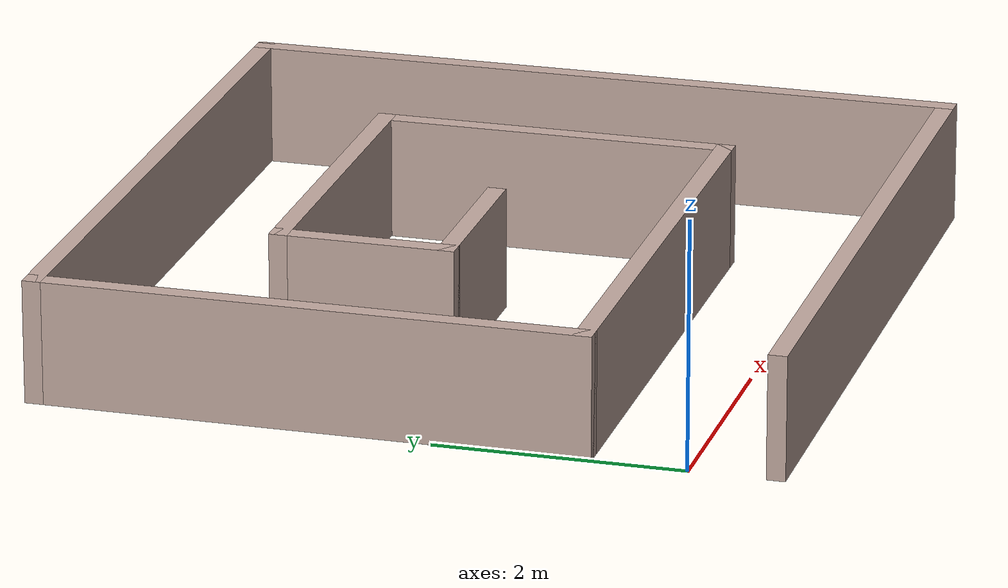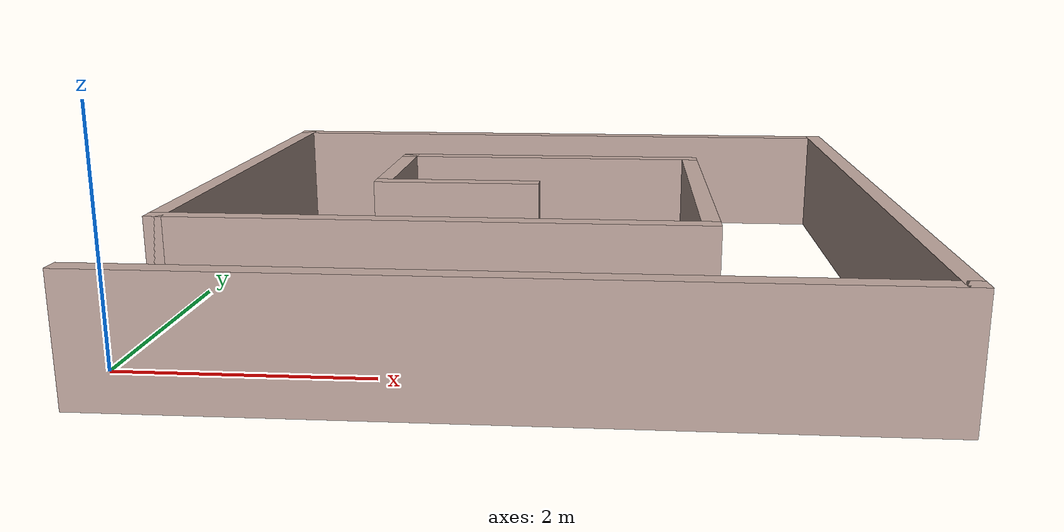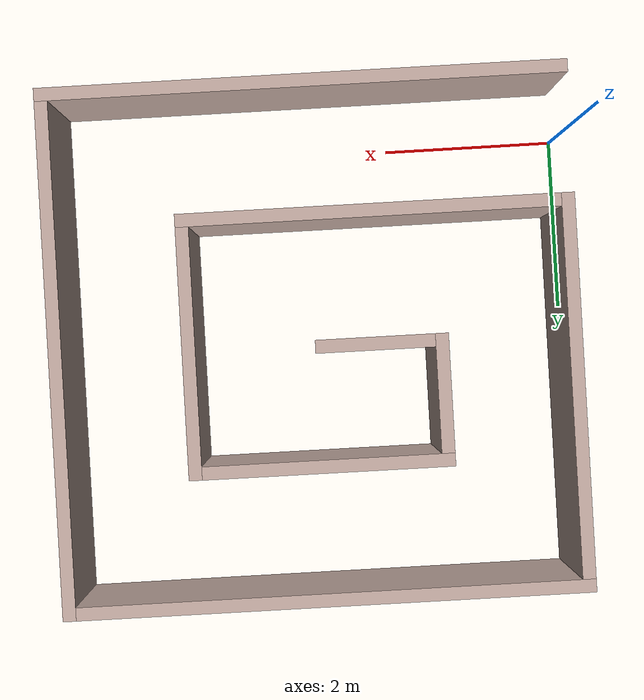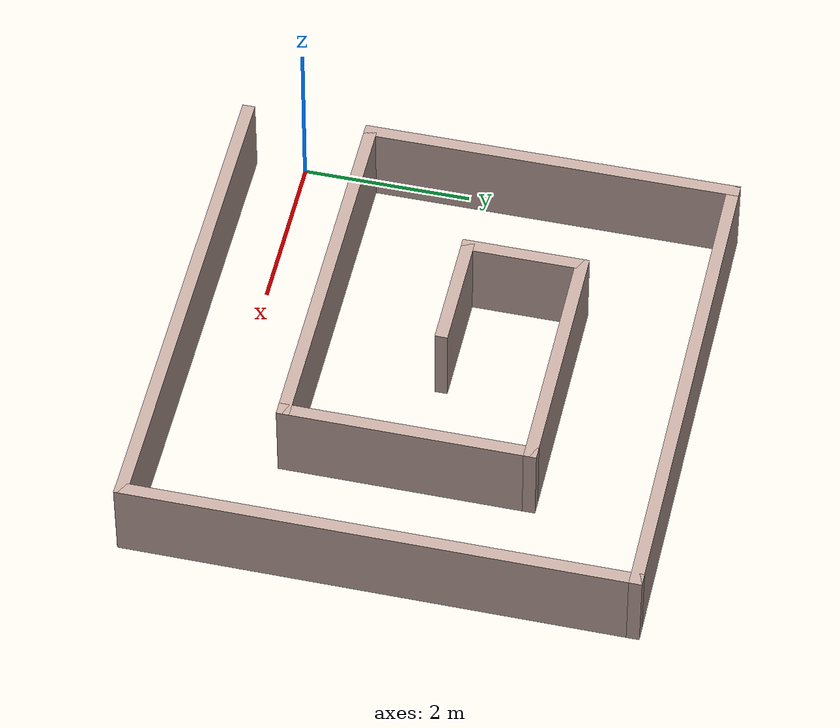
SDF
<?xml version='1.0'?>
<sdf version='1.7'>
  <model name='labirinth'>
    <static>true</static>
    <pose>3 2.25 0 0 0 0</pose>
    <link name='Wall_11'>
      <collision name='Wall_11_Collision'>
        <geometry>
          <box>
            <size>6 0.15 1</size>
          </box>
        </geometry>
        <pose>0 0 0.5 0 -0 0</pose>
      </collision>
      <visual name='Wall_11_Visual'>
        <pose>0 0 0.5 0 -0 0</pose>
        <geometry>
          <box>
            <size>6 0.15 1</size>
          </box>
        </geometry>
        <material>
          <script>
            <uri>file://media/materials/scripts/gazebo.material</uri>
            <name>Gazebo/Grey</name>
          </script>
          <ambient>0.760784 0.662745 0.627451 1</ambient>
        </material>
        <meta>
          <layer>0</layer>
        </meta>
      </visual>
      <pose>-0 -2.925 0 0 -0 3.14159</pose>
    </link>
    <link name='Wall_14'>
      <collision name='Wall_14_Collision'>
        <geometry>
          <box>
            <size>6 0.15 1</size>
          </box>
        </geometry>
        <pose>0 0 0.5 0 -0 0</pose>
      </collision>
      <visual name='Wall_14_Visual'>
        <pose>0 0 0.5 0 -0 0</pose>
        <geometry>
          <box>
            <size>6 0.15 1</size>
          </box>
        </geometry>
        <material>
          <script>
            <uri>file://media/materials/scripts/gazebo.material</uri>
            <name>Gazebo/Grey</name>
          </script>
          <ambient>0.760784 0.662745 0.627451 1</ambient>
        </material>
        <meta>
          <layer>0</layer>
        </meta>
      </visual>
      <pose>2.925 0 0 0 -0 1.5708</pose>
    </link>
    <link name='Wall_15'>
      <collision name='Wall_15_Collision'>
        <geometry>
          <box>
            <size>6 0.15 1</size>
          </box>
        </geometry>
        <pose>0 0 0.5 0 -0 0</pose>
      </collision>
      <visual name='Wall_15_Visual'>
        <pose>0 0 0.5 0 -0 0</pose>
        <geometry>
          <box>
            <size>6 0.15 1</size>
          </box>
        </geometry>
        <material>
          <script>
            <uri>file://media/materials/scripts/gazebo.material</uri>
            <name>Gazebo/Grey</name>
          </script>
          <ambient>0.760784 0.662745 0.627451 1</ambient>
        </material>
        <meta>
          <layer>0</layer>
        </meta>
      </visual>
      <pose>-0 2.925 0 0 -0 3.14159</pose>
    </link>
    <link name='Wall_16'>
      <collision name='Wall_16_Collision'>
        <geometry>
          <box>
            <size>4.5 0.15 1</size>
          </box>
        </geometry>
        <pose>0 0 0.5 0 -0 0</pose>
      </collision>
      <visual name='Wall_16_Visual'>
        <pose>0 0 0.5 0 -0 0</pose>
        <geometry>
          <box>
            <size>4.5 0.15 1</size>
          </box>
        </geometry>
        <material>
          <script>
            <uri>file://media/materials/scripts/gazebo.material</uri>
            <name>Gazebo/Grey</name>
          </script>
          <ambient>0.760784 0.662745 0.627451 1</ambient>
        </material>
        <meta>
          <layer>0</layer>
        </meta>
      </visual>
      <pose>-2.925 0.75 0 0 -0 -1.5708</pose>
    </link>
    <link name='Wall_18'>
      <collision name='Wall_18_Collision'>
        <geometry>
          <box>
            <size>4.5 0.15 1</size>
          </box>
        </geometry>
        <pose>0 0 0.5 0 -0 0</pose>
      </collision>
      <visual name='Wall_18_Visual'>
        <pose>0 0 0.5 0 -0 0</pose>
        <geometry>
          <box>
            <size>4.5 0.15 1</size>
          </box>
        </geometry>
        <material>
          <script>
            <uri>file://media/materials/scripts/gazebo.material</uri>
            <name>Gazebo/Grey</name>
          </script>
          <ambient>0.760784 0.662745 0.627451 1</ambient>
        </material>
        <meta>
          <layer>0</layer>
        </meta>
      </visual>
      <pose>-0.75 -1.425 0 0 -0 0</pose>
    </link>
    <link name='Wall_20'>
      <collision name='Wall_20_Collision'>
        <geometry>
          <box>
            <size>3 0.15 1</size>
          </box>
        </geometry>
        <pose>0 0 0.5 0 -0 0</pose>
      </collision>
      <visual name='Wall_20_Visual'>
        <pose>0 0 0.5 0 -0 0</pose>
        <geometry>
          <box>
            <size>3 0.15 1</size>
          </box>
        </geometry>
        <material>
          <script>
            <uri>file://media/materials/scripts/gazebo.material</uri>
            <name>Gazebo/Grey</name>
          </script>
          <ambient>0.760784 0.662745 0.627451 1</ambient>
        </material>
        <meta>
          <layer>0</layer>
        </meta>
      </visual>
      <pose>1.425 0 0 0 -0 1.5708</pose>
    </link>
    <link name='Wall_21'>
      <collision name='Wall_21_Collision'>
        <geometry>
          <box>
            <size>3 0.15 1</size>
          </box>
        </geometry>
        <pose>0 0 0.5 0 -0 0</pose>
      </collision>
      <visual name='Wall_21_Visual'>
        <pose>0 0 0.5 0 -0 0</pose>
        <geometry>
          <box>
            <size>3 0.15 1</size>
          </box>
        </geometry>
        <material>
          <script>
            <uri>file://media/materials/scripts/gazebo.material</uri>
            <name>Gazebo/Grey</name>
          </script>
          <ambient>0.760784 0.662745 0.627451 1</ambient>
        </material>
        <meta>
          <layer>0</layer>
        </meta>
      </visual>
      <pose>-0 1.425 0 0 -0 3.14159</pose>
    </link>
    <link name='Wall_22'>
      <collision name='Wall_22_Collision'>
        <geometry>
          <box>
            <size>1.5 0.15 1</size>
          </box>
        </geometry>
        <pose>0 0 0.5 0 -0 0</pose>
      </collision>
      <visual name='Wall_22_Visual'>
        <pose>0 0 0.5 0 -0 0</pose>
        <geometry>
          <box>
            <size>1.5 0.15 1</size>
          </box>
        </geometry>
        <material>
          <script>
            <uri>file://media/materials/scripts/gazebo.material</uri>
            <name>Gazebo/Grey</name>
          </script>
          <ambient>0.760784 0.662745 0.627451 1</ambient>
        </material>
        <meta>
          <layer>0</layer>
        </meta>
      </visual>
      <pose>-1.425 0.75 0 0 -0 -1.5708</pose>
    </link>
    <link name='Wall_23'>
      <collision name='Wall_23_Collision'>
        <geometry>
          <box>
            <size>1.5 0.15 1</size>
          </box>
        </geometry>
        <pose>0 0 0.5 0 -0 0</pose>
      </collision>
      <visual name='Wall_23_Visual'>
        <pose>0 0 0.5 0 -0 0</pose>
        <geometry>
          <box>
            <size>1.5 0.15 1</size>
          </box>
        </geometry>
        <material>
          <script>
            <uri>file://media/materials/scripts/gazebo.material</uri>
            <name>Gazebo/Grey</name>
          </script>
          <ambient>0.760784 0.662745 0.627451 1</ambient>
        </material>
        <meta>
          <layer>0</layer>
        </meta>
      </visual>
      <pose>-0.75 0.075 0 0 -0 0</pose>
    </link>
    <static>1</static>
  </model>
</sdf>
